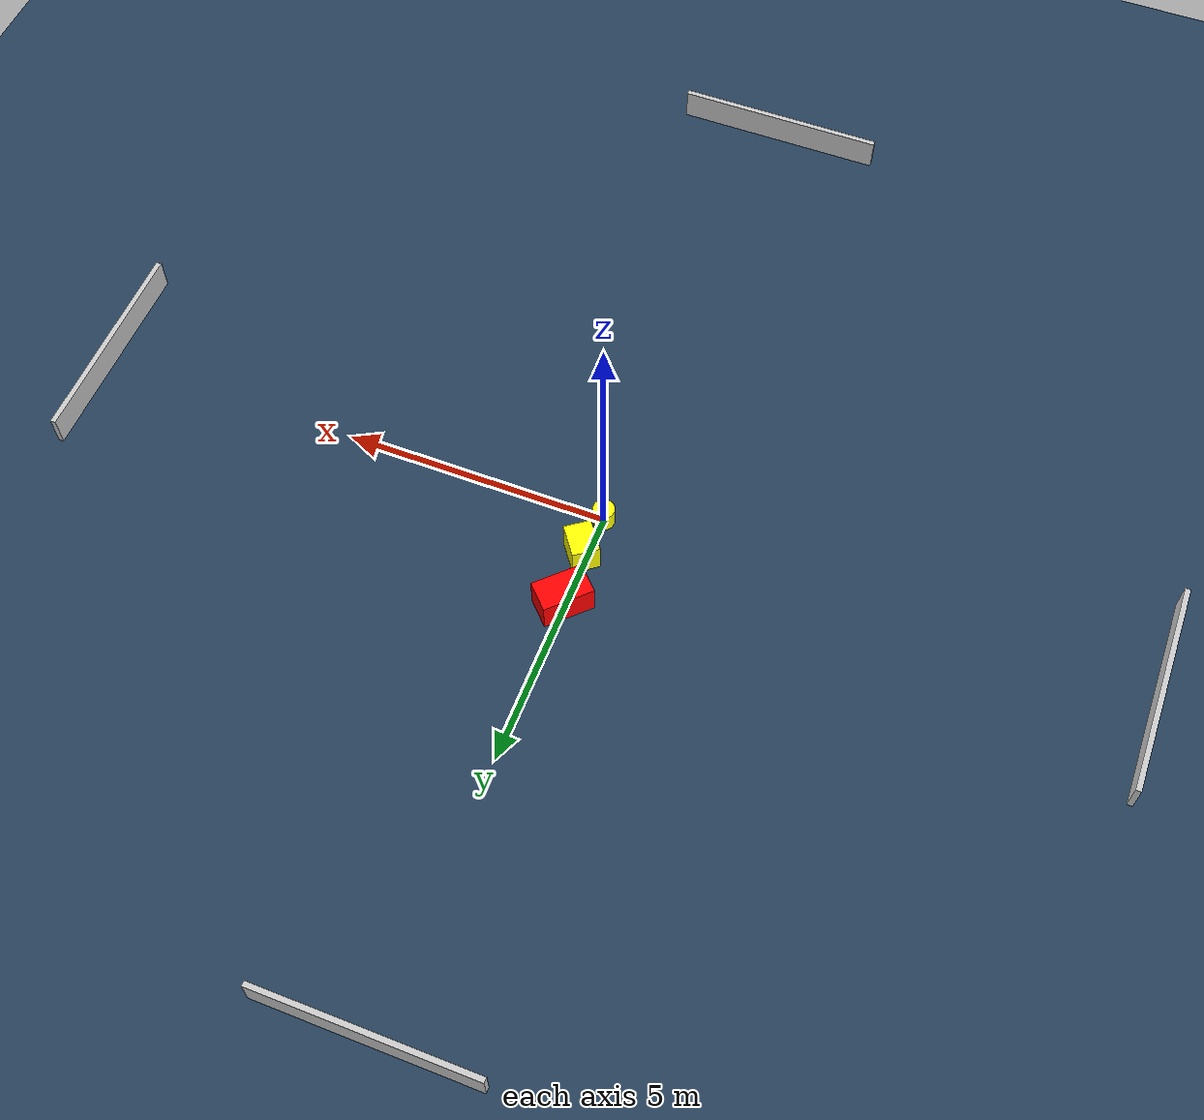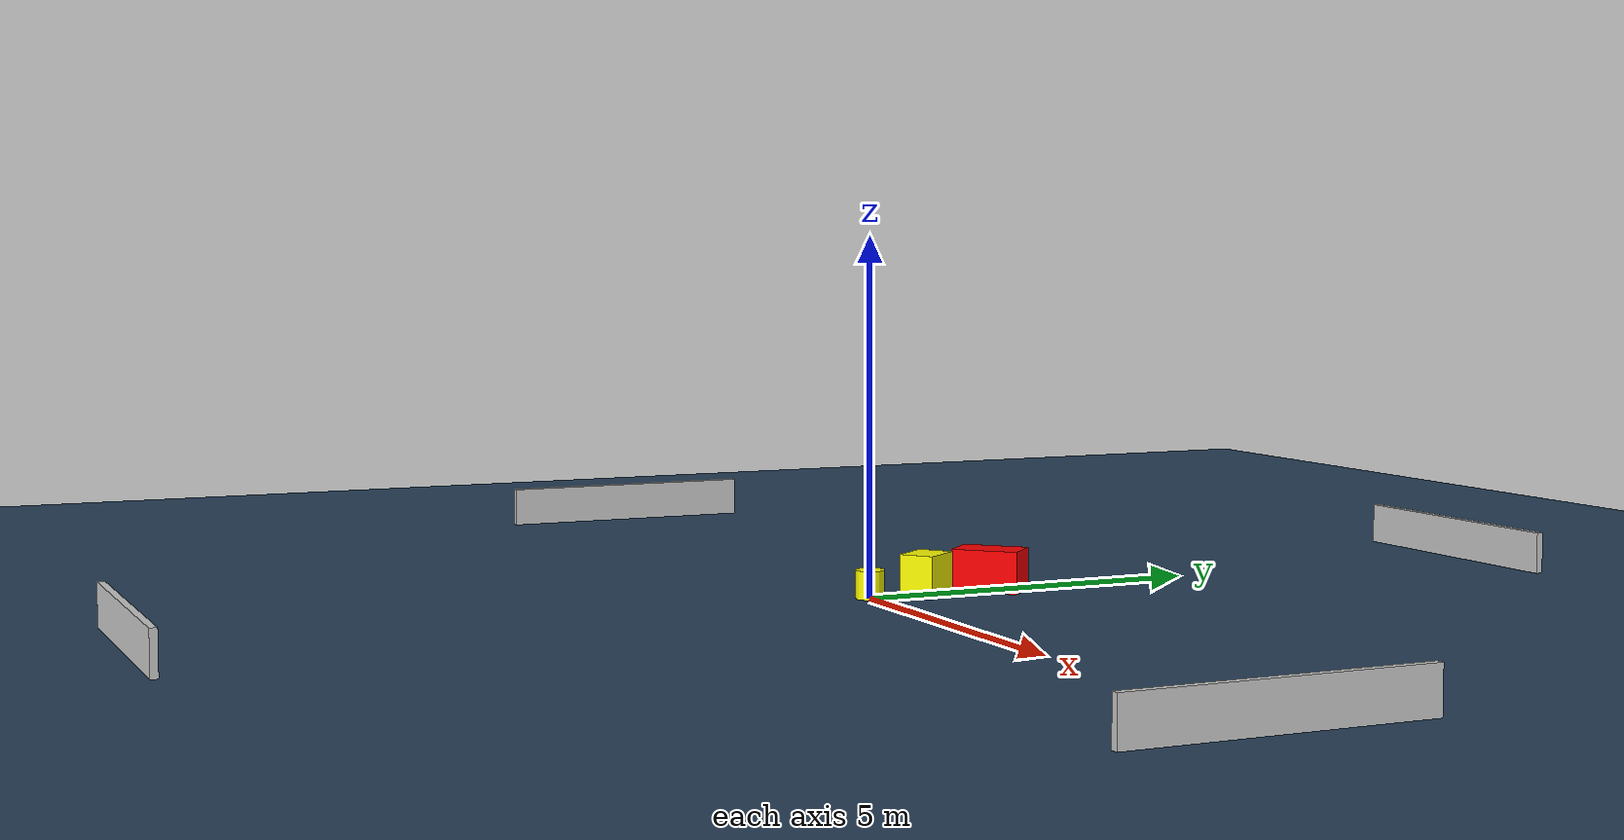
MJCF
<?xml version="1.0" ?>
<mujoco model="generated_environment">
  <option timestep="0.01" integrator="RK4" cone="elliptic"/>
  <default>
    <geom density="1"/>
  </default>
  <asset>
    <texture builtin="gradient" height="3072" name="skybox" rgb1="0.3 0.5 0.7" rgb2="0 0 0" type="skybox" width="512"/>
    <texture builtin="checker" height="300" name="groundplane" rgb1="0.2 0.3 0.4" rgb2="0.1 0.2 0.3" type="2d" width="300"/>
    <material name="groundplane" reflectance="0.2" texrepeat="5 5" texture="groundplane"/>
  </asset>
  <worldbody>
    <light dir="0 0 -1" directional="true" pos="0 0 1.5"/>
    <geom condim="3" friction="0.5 0.005 0.001" material="groundplane" name="floor" pos="0 0 0" size="0 0 0.05" type="plane"/>
    <body name="walls">
      <geom name="wall_1" condim="4" pos="-10.0 0.0 0.3" rgba="0.800000011920929 0.800000011920929 0.800000011920929 1.0" size="0.05 2.0 0.3" type="box"/>
      <geom name="wall_2" condim="4" pos="10.0 0.0 0.3" rgba="0.800000011920929 0.800000011920929 0.800000011920929 1.0" size="0.05 2.0 0.3" type="box"/>
      <geom name="wall_3" condim="4" pos="0.0 -10.0 0.3" rgba="0.800000011920929 0.800000011920929 0.800000011920929 1.0" size="2.0 0.05 0.3" type="box"/>
      <geom name="wall_4" condim="4" pos="0.0 10.0 0.3" rgba="0.800000011920929 0.800000011920929 0.800000011920929 1.0" size="2.0 0.05 0.3" type="box"/>
    </body>
    <body name="robot">
      <joint name="joint_x" type="slide" pos="0 0 0" axis="1 0 0"/>
      <joint name="joint_y" type="slide" pos="0 0 0" axis="0 1 0"/>
      <geom name="robot" type="cylinder" pos="0.0 0.0 0.2" size="0.2 0.2 0.0" mass="5.0" friction="1.0 0.005 0.0001" condim="4" rgba="1.0 1.0 0.0 1.0"/>
    </body>
    <body name="obstacle_1_movable">
      <geom name="obstacle_1_movable" condim="4" pos="0.10555402686240407 0.8155217398677296 0.3" euler="0 0 306.5450345033158" friction="0.0 0.005 0.001" rgba="1.0 1.0 0.0 1.0" size="0.30991079736423366 0.2526731329992721 0.3" type="box" mass="0.1"/>
      <joint type="free"/>
    </body>
    <body name="obstacle_2_static">
      <geom name="obstacle_2_static" condim="4" pos="0.04570719160056724 1.8533547729304152 0.3" euler="0 0 134.6785366419639" friction="0.0 0.005 0.001" rgba="1.0 0.0 0.0 1.0" size="0.2874863093452702 0.47652104033388726 0.3" type="box"/>
    </body>
  </worldbody>
  <actuator>
    <motor name="actuator_x" joint="joint_x" gear="1" ctrlrange="-1 1"/>
    <motor name="actuator_y" joint="joint_y" gear="1" ctrlrange="-1 1"/>
  </actuator>
</mujoco>
